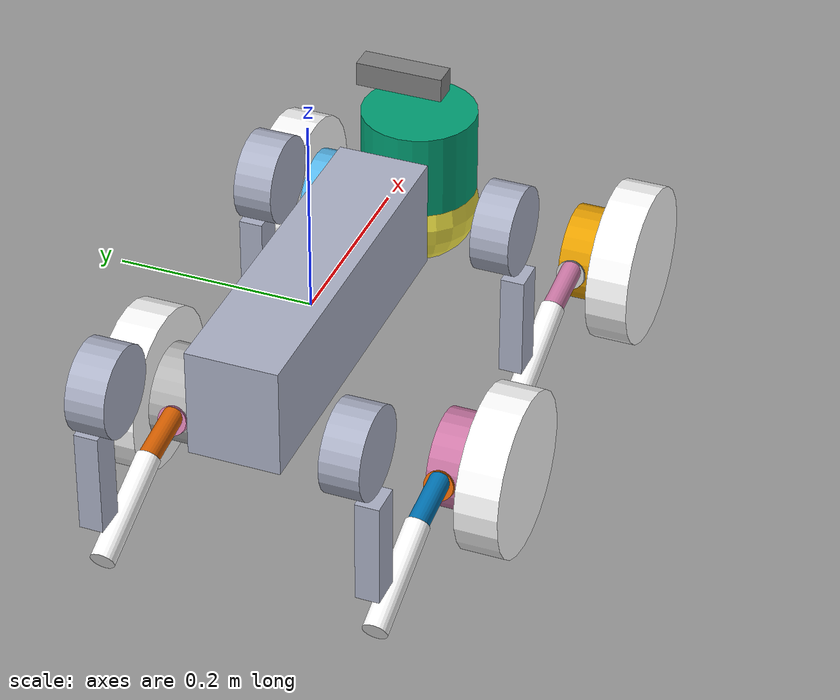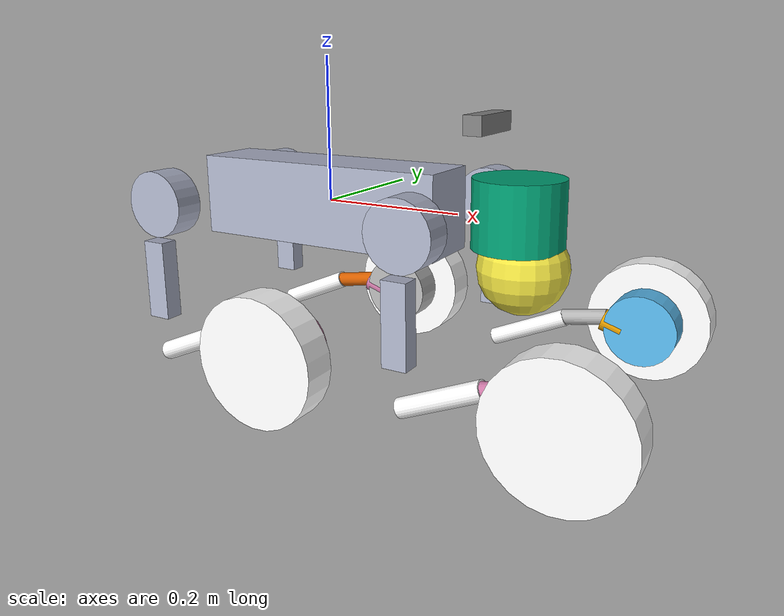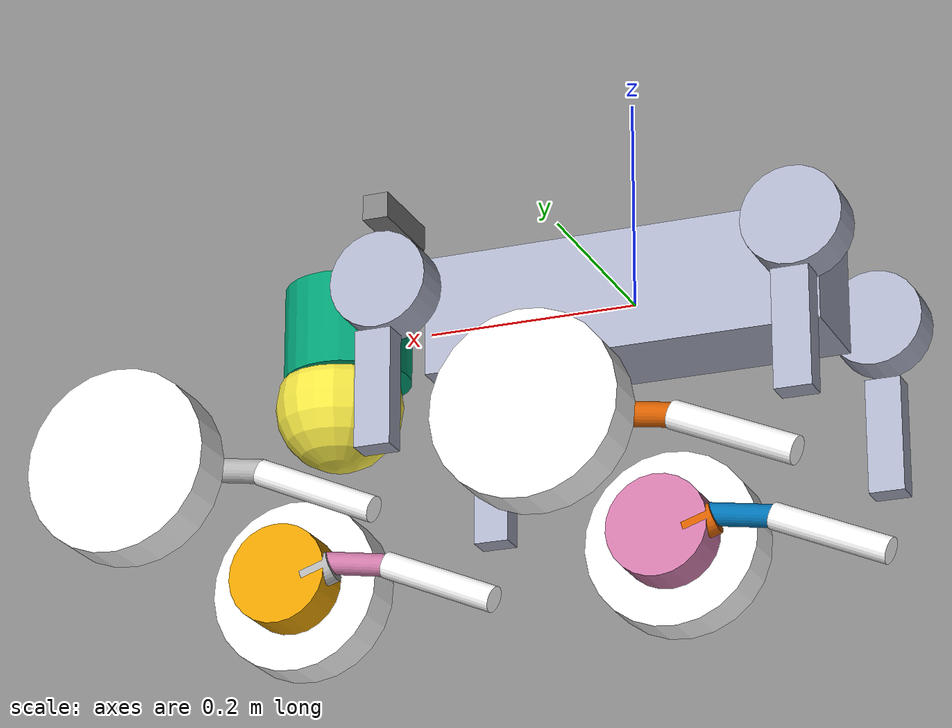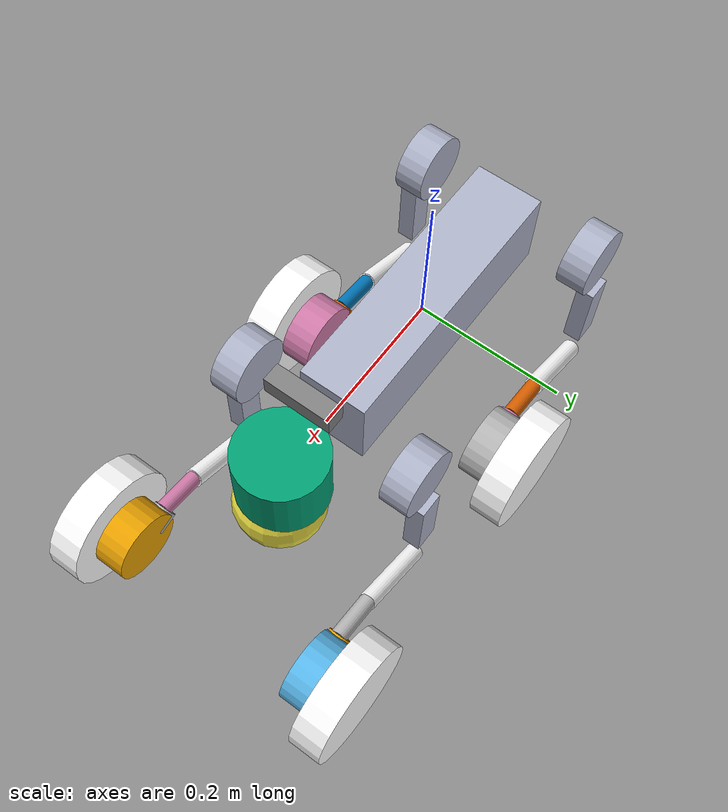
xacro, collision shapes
<?xml version="1.0"?>

<robot name="go2w_description" xmlns:xacro="http://www.ros.org/wiki/xacro">

    <xacro:include filename="$(find go2w_description)/urdf/go2w_description.urdf"/>
    <xacro:include filename="$(find go2w_description)/xacro/gazebo.xacro"/>
    <xacro:include filename="$(find robot_common)/xacro/d435.xacro"/>

    <!-- D435 camera -->
    <xacro:sensor_d435 parent="trunk" name="camera">
        <origin xyz="0.24 0 0.12" rpy="0 0 0"/>
    </xacro:sensor_d435>

    <!-- Livox Mid360 LiDAR -->

</robot>

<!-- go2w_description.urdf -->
<robot name="go2w_description">
  <link name="base">
    <visual>
      <origin rpy="0 0 0" xyz="0 0 0"/>
      <geometry>
        <box size="0.001 0.001 0.001"/>
      </geometry>
    </visual>
  </link>
  <joint name="floating_base" type="fixed">
    <origin rpy="0 0 0" xyz="0 0 0"/>
    <parent link="base"/>
    <child link="trunk"/>
  </joint>

  <link name="trunk">
    <inertial>
      <origin xyz="0.021112 0 -0.005366" rpy="0 0 0" />
      <mass value="6.921" />
      <inertia ixx="0.02448" ixy="0.00012166" ixz="0.0014849" iyy="0.098077" iyz="-3.12E-05" izz="0.107" />
    </inertial>
    <visual>
      <origin xyz="0 0 0" rpy="0 0 0" />
      <geometry>
        <mesh filename="package://go2w_description/meshes/base.dae" />
      </geometry>
      <material name="深色橡胶_001-effect"><color rgba="0.6717055 0.6924257 0.7742702 1" /></material><material name="白色logo_001-effect"><color rgba="1 1 1 1" /></material><material name="黑色贴纸_007-effect"><color rgba="0.009018 0.009018 0.009018 1" /></material><material name="黑色金属_007-effect"><color rgba="0.01341 0.01341 0.01341 1" /></material><material name="黑色塑料_003-effect"><color rgba="0.023455 0.023455 0.023455 1" /></material></visual>
    <collision>
      <origin rpy="0 0 0" xyz="0 0 0" />
      <geometry>
        <box size="0.3762 0.0935 0.114" />
      </geometry>
    </collision>
  </link>
  <link name="Head_upper">
    <inertial>
      <origin xyz="0 0 0" rpy="0 0 0" />
      <mass value="0.001" />
      <inertia ixx="9.6e-06" ixy="0" ixz="0" iyy="9.6e-06" iyz="0" izz="9.6e-06" />
    </inertial>
    <collision>
      <origin xyz="0 0 0" rpy="0 0 0" />
      <geometry>
        <cylinder radius="0.06" length="0.09" />
      </geometry>
    </collision>
  </link>
  <joint name="Head_upper_joint" type="fixed" dont_collapse="true">
    <origin xyz="0.285 0 0.01" rpy="0 0 0" />
    <parent link="trunk" />
    <child link="Head_upper" />
    <axis xyz="0 0 0" />
  </joint>
  <link name="Head_lower">
    <inertial>
      <origin xyz="0 0 0" rpy="0 0 0" />
      <mass value="0.001" />
      <inertia ixx="9.6e-06" ixy="0" ixz="0" iyy="9.6e-06" iyz="0" izz="9.6e-06" />
    </inertial>
    <collision>
      <origin xyz="0 0 0" rpy="0 0 0" />
      <geometry>
        <sphere radius="0.06" />
      </geometry>
    </collision>
  </link>
  <joint name="Head_lower_joint" type="fixed" dont_collapse="true">
    <origin xyz="0.008 0 -0.07" rpy="0 0 0" />
    <parent link="Head_upper" />
    <child link="Head_lower" />
    <axis xyz="0 0 0" />
  </joint>
  <link name="FL_hip">
    <inertial>
      <origin xyz="-0.0054 0.00194 -0.000105" rpy="0 0 0" />
      <mass value="0.678" />
      <inertia ixx="0.00048" ixy="-3.01E-06" ixz="1.11E-06" iyy="0.000884" iyz="-1.42E-06" izz="0.000596" />
    </inertial>
    <visual>
      <origin xyz="0 0 0" rpy="0 0 0" />
      <geometry>
        <mesh filename="package://go2w_description/meshes/hip.dae" />
      </geometry>
      <material name="深色橡胶_001-effect"><color rgba="0.6717055 0.6924257 0.7742702 1" /></material><material name="Material-effect"><color rgba="0.9 0.95 0.95 1" /></material></visual>
    <collision>
      <origin rpy="1.5707963267948966 0 0" xyz="0 0.08 0" />
      <geometry>
        <cylinder length="0.04" radius="0.046" />
      </geometry>
    </collision>
  </link>
  <joint name="FL_hip_joint" type="revolute">
    <origin xyz="0.1934 0.0465 0" rpy="0 0 0" />
    <parent link="trunk" />
    <child link="FL_hip" />
    <axis xyz="1 0 0" />
    <limit lower="-1.0472" upper="1.0472" effort="23.7" velocity="30.1" />
  </joint>
  <link name="FL_thigh">
    <inertial>
      <origin xyz="-0.00374 -0.0223 -0.0327" rpy="0 0 0" />
      <mass value="1.152" />
      <inertia ixx="0.00584" ixy="8.72E-05" ixz="-0.000289" iyy="0.0058" iyz="0.000808" izz="0.00103" />
    </inertial>
    <visual>
      <origin xyz="0 0 0" rpy="0 0 0" />
      <geometry>
        <mesh filename="package://go2w_description/meshes/thigh.dae" />
      </geometry>
      <material name="深色橡胶_003-effect"><color rgba="0.6717055 0.6924257 0.7742702 1" /></material><material name="Material_009-effect"><color rgba="0.9 0.95 0.95 1" /></material></visual>
    <collision>
      <origin rpy="0 1.5707963267948966 0" xyz="0 0 -0.1065" />
      <geometry>
        <box size="0.11 0.0245 0.034" />
      </geometry>
    </collision>
  </link>
  <joint name="FL_thigh_joint" type="revolute">
    <origin xyz="0 0.0955 0" rpy="0 0 0" />
    <parent link="FL_hip" />
    <child link="FL_thigh" />
    <axis xyz="0 1 0" />
    <limit lower="-1.5707963267948966" upper="3.4907" effort="23.7" velocity="30.1" />
  </joint>
  <link name="FL_calf">
    <inertial>
      <origin xyz="0.00548 -0.000975 -0.115" rpy="0 0 0" />
      <mass value="0.154" />
      <inertia ixx="0.00108" ixy="3.4E-07" ixz="1.72E-05" iyy="0.0011" iyz="8.28E-06" izz="3.29E-05" />
    </inertial>
    <visual>
      <origin xyz="0 0 0" rpy="0 0 0" />
      <geometry>
        <mesh filename="package://go2w_description/meshes/calf.stl" />
      </geometry>
      <material name="">
        <color rgba="1 1 1 1" />
      </material>
    </visual>
    <collision>
      <origin rpy="0 -0.21 0" xyz="0.008 0 -0.06" />
      <geometry>
        <cylinder length="0.12" radius="0.012" />
      </geometry>
    </collision>
  </link>
  <joint name="FL_calf_joint" type="revolute">
    <origin xyz="0 0 -0.213" rpy="0 0 0" />
    <parent link="FL_thigh" />
    <child link="FL_calf" />
    <axis xyz="0 1 0" />
    <limit lower="-2.7227" upper="-0.83776" effort="35.55" velocity="20.07" />
  </joint>
  <link name="FL_calflower">
    <collision>
      <origin rpy="0 0 0" xyz="0 0 0" />
      <geometry>
        <cylinder length="0.065" radius="0.011" />
      </geometry>
    </collision>
  </link>
  <joint name="FL_calflower_joint" type="fixed">
    <origin xyz="0.020 0 -0.148" rpy="0 0.05 0" />
    <parent link="FL_calf" />
    <child link="FL_calflower" />
    <axis xyz="0 0 0" />
  </joint>
  <link name="FL_calflower1">
    <collision>
      <origin rpy="0 0 0" xyz="0 0 0" />
      <geometry>
        <cylinder length="0.03" radius="0.0155" />
      </geometry>
    </collision>
  </link>
  <joint name="FL_calflower1_joint" type="fixed">
    <origin xyz="-0.01 0 -0.04" rpy="0 0.48 0" />
    <parent link="FL_calflower" />
    <child link="FL_calflower1" />
    <axis xyz="0 0 0" />
  </joint>

  <link name="FL_foot_motor">
    <inertial>
      <origin xyz="0 0.0 0" rpy="0 0 0" />
      <mass value="0.646" />
      <inertia ixx="0.001" ixy="0" ixz="0" iyy="0.0016" iyz="0" izz="0.001" />
    </inertial>
    <collision>
      <origin rpy="1.5707963267948966 0 0" xyz="0 0 0" />
      <geometry>
        <cylinder length="0.05" radius="0.05" />
      </geometry>
    </collision>
  </link>

  <joint name="FL_foot_motor_joint" type="fixed">
    <origin xyz="-0.00 0.01 -0.2264" rpy="0 0.0 0" />
    <parent link="FL_calf" />
    <child link="FL_foot_motor" />
    <axis xyz="0 0 0" />
  </joint>

  <link name="FL_foot">
    <inertial>
      <origin xyz="0 0.06 0" rpy="0 0 0" />
      <mass value="0.520" />
      <inertia ixx="0.0007" ixy="0" ixz="0" iyy="0.0012" iyz="0" izz="0.0007" />
    </inertial>
    <visual>
      <origin xyz="0 0 0" rpy="0 0 0" />
      <geometry>
        <mesh filename="package://go2w_description/meshes/left_wheel.dae" />
      </geometry>
      <material name="">
        <color rgba="1 1 1 1" />
      </material>
    </visual>
    <collision>
      <origin rpy="1.57079632679 0 0" xyz="0 0.05 0" />
      <geometry>
        <cylinder length="0.045" radius="0.086" />
      </geometry>
    </collision>
  </link>
  <joint name="FL_foot_joint" type="continuous">
    <origin xyz="0 0 -0.2264" rpy="0 0 0" />
    <parent link="FL_calf" />
    <child link="FL_foot" />
    <axis xyz="0 1 0" />

      <limit effort="23.7" velocity="30.1" />
  </joint>

  <link name="FR_hip">
    <inertial>
      <origin xyz="-0.0054 -0.00194 -0.000105" rpy="0 0 0" />
      <mass value="0.678" />
      <inertia ixx="0.00048" ixy="3.01E-06" ixz="1.11E-06" iyy="0.000884" iyz="1.42E-06" izz="0.000596" />
    </inertial>
    <visual>
      <origin xyz="0 0 0" rpy="3.1415 0 0" />
      <geometry>
        <mesh filename="package://go2w_description/meshes/hip.dae" />
      </geometry>
      <material name="深色橡胶_001-effect"><color rgba="0.6717055 0.6924257 0.7742702 1" /></material><material name="Material-effect"><color rgba="0.9 0.95 0.95 1" /></material></visual>
    <collision>
      <origin rpy="1.5707963267948966 0 0" xyz="0 -0.08 0" />
      <geometry>
        <cylinder length="0.04" radius="0.046" />
      </geometry>
    </collision>
  </link>
  <joint name="FR_hip_joint" type="revolute">
    <origin xyz="0.1934 -0.0465 0" rpy="0 0 0" />
    <parent link="trunk" />
    <child link="FR_hip" />
    <axis xyz="1 0 0" />
    <limit lower="-1.0472" upper="1.0472" effort="23.7" velocity="30.1" />
  </joint>
  <link name="FR_thigh">
    <inertial>
      <origin xyz="-0.00374 0.0223 -0.0327" rpy="0 0 0" />
      <mass value="1.152" />
      <inertia ixx="0.00584" ixy="-8.72E-05" ixz="-0.000289" iyy="0.0058" iyz="-0.000808" izz="0.00103" />
    </inertial>
    <visual>
      <origin xyz="0 0 0" rpy="0 0 0" />
      <geometry>
        <mesh filename="package://go2w_description/meshes/thigh_mirror.dae" />
      </geometry>
      <material name="深色橡胶_012-effect"><color rgba="0.6717055 0.6924257 0.7742702 1" /></material><material name="Material_011-effect"><color rgba="0.9 0.95 0.95 1" /></material></visual>
    <collision>
      <origin rpy="0 1.5707963267948966 0" xyz="0 0 -0.1065" />
      <geometry>
        <box size="0.11 0.0245 0.034" />
      </geometry>
    </collision>
  </link>
  <joint name="FR_thigh_joint" type="revolute">
    <origin xyz="0 -0.0955 0" rpy="0 0 0" />
    <parent link="FR_hip" />
    <child link="FR_thigh" />
    <axis xyz="0 1 0" />
    <limit lower="-1.5707963267948966" upper="3.4907" effort="23.7" velocity="30.1" />
  </joint>
  <link name="FR_calf">
    <inertial>
      <origin xyz="0.00548 0.000975 -0.115" rpy="0 0 0" />
      <mass value="0.154" />
      <inertia ixx="0.00108" ixy="-3.4E-07" ixz="1.72E-05" iyy="0.0011" iyz="-8.28E-06" izz="3.29E-05" />
    </inertial>
    <visual>
      <origin xyz="0 0 0" rpy="0 0 0" />
      <geometry>
        <mesh filename="package://go2w_description/meshes/calf_mirror.stl" />
      </geometry>
      <material name="">
        <color rgba="1 1 1 1" />
      </material>
    </visual>
    <collision>
      <origin rpy="0 -0.2 0" xyz="0.01 0 -0.06" />
      <geometry>
        <cylinder length="0.12" radius="0.013" />
      </geometry>
    </collision>
  </link>
  <joint name="FR_calf_joint" type="revolute">
    <origin xyz="0 0 -0.213" rpy="0 0 0" />
    <parent link="FR_thigh" />
    <child link="FR_calf" />
    <axis xyz="0 1 0" />
    <limit lower="-2.7227" upper="-0.83776" effort="35.55" velocity="20.07" />
  </joint>
  <link name="FR_calflower">
    <collision>
      <origin rpy="0 0 0" xyz="0 0 0" />
      <geometry>
        <cylinder length="0.065" radius="0.011" />
      </geometry>
    </collision>
  </link>
  <joint name="FR_calflower_joint" type="fixed">
    <origin xyz="0.020 0 -0.148" rpy="0 0.05 0" />
    <parent link="FR_calf" />
    <child link="FR_calflower" />
    <axis xyz="0 0 0" />
  </joint>
  <link name="FR_calflower1">
    <collision>
      <origin rpy="0 0 0" xyz="0 0 0" />
      <geometry>
        <cylinder length="0.03" radius="0.0155" />
      </geometry>
    </collision>
  </link>
  <joint name="FR_calflower1_joint" type="fixed">
    <origin xyz="-0.01 0 -0.04" rpy="0 0.48 0" />
    <parent link="FR_calflower" />
    <child link="FR_calflower1" />
    <axis xyz="0 0 0" />
  </joint>

  <link name="FR_foot_motor">
    <inertial>
      <origin xyz="0 0.0 0" rpy="0 0 0" />
      <mass value="0.646" />
      <inertia ixx="0.001" ixy="0" ixz="0" iyy="0.0016" iyz="0" izz="0.001" />
    </inertial>
    <collision>
      <origin rpy="1.5707963267948966 0 0" xyz="0 0 0" />
      <geometry>
        <cylinder length="0.05" radius="0.05" />
      </geometry>
    </collision>
  </link>

  <joint name="FR_foot_motor_joint" type="fixed">
    <origin xyz="0.0 -0.01 -0.2264" rpy="0 0.0 0" />
    <parent link="FR_calf" />
    <child link="FR_foot_motor" />
    <axis xyz="0 0 0" />
  </joint>

  <link name="FR_foot">
    <inertial>
      <origin xyz="0 -0.06 0" rpy="0 0 0" />
      <mass value="0.520" />
      <inertia ixx="0.0007" ixy="0" ixz="0" iyy="0.0012" iyz="0" izz="0.0007" />
    </inertial>
    <visual>
      <origin xyz="0 0 0" rpy="0 0 0" />
      <geometry>
        <mesh filename="package://go2w_description/meshes/right_wheel.dae" />
      </geometry>
      <material name="">
        <color rgba="1 1 1 1" />
      </material>
    </visual>
    <collision>
      <origin rpy="1.57079632679 0 0" xyz="0 -0.05 0" />
      <geometry>
        <cylinder length="0.045" radius="0.086" />
      </geometry>
    </collision>
  </link>
  <joint name="FR_foot_joint" type="continuous">
    <origin xyz="0 0 -0.2264" rpy="0 0 0" />
    <parent link="FR_calf" />
    <child link="FR_foot" />
    <axis xyz="0 1 0" />
      <limit effort="23.7" velocity="30.1" />
  </joint>

  <link name="RL_hip">
    <inertial>
      <origin xyz="0.0054 0.00194 -0.000105" rpy="0 0 0" />
      <mass value="0.678" />
      <inertia ixx="0.00048" ixy="3.01E-06" ixz="-1.11E-06" iyy="0.000884" iyz="-1.42E-06" izz="0.000596" />
    </inertial>
    <visual>
      <origin xyz="0 0 0" rpy="0 3.1415 0" />
      <geometry>
        <mesh filename="package://go2w_description/meshes/hip.dae" />
      </geometry>
      <material name="深色橡胶_001-effect"><color rgba="0.6717055 0.6924257 0.7742702 1" /></material><material name="Material-effect"><color rgba="0.9 0.95 0.95 1" /></material></visual>
    <collision>
      <origin rpy="1.5707963267948966 0 0" xyz="0 0.08 0" />
      <geometry>
        <cylinder length="0.04" radius="0.046" />
      </geometry>
    </collision>
  </link>
  <joint name="RL_hip_joint" type="revolute">
    <origin xyz="-0.1934 0.0465 0" rpy="0 0 0" />
    <parent link="trunk" />
    <child link="RL_hip" />
    <axis xyz="1 0 0" />
    <limit lower="-1.0472" upper="1.0472" effort="23.7" velocity="30.1" />
  </joint>
  <link name="RL_thigh">
    <inertial>
      <origin xyz="-0.00374 -0.0223 -0.0327" rpy="0 0 0" />
      <mass value="1.152" />
      <inertia ixx="0.00584" ixy="8.72E-05" ixz="-0.000289" iyy="0.0058" iyz="0.000808" izz="0.00103" />
    </inertial>
    <visual>
      <origin xyz="0 0 0" rpy="0 0 0" />
      <geometry>
        <mesh filename="package://go2w_description/meshes/thigh.dae" />
      </geometry>
      <material name="深色橡胶_003-effect"><color rgba="0.6717055 0.6924257 0.7742702 1" /></material><material name="Material_009-effect"><color rgba="0.9 0.95 0.95 1" /></material></visual>
    <collision>
      <origin rpy="0 1.5707963267948966 0" xyz="0 0 -0.1065" />
      <geometry>
        <box size="0.11 0.0245 0.034" />
      </geometry>
    </collision>
  </link>
  <joint name="RL_thigh_joint" type="revolute">
    <origin xyz="0 0.0955 0" rpy="0 0 0" />
    <parent link="RL_hip" />
    <child link="RL_thigh" />
    <axis xyz="0 1 0" />
    <limit lower="-0.5236" upper="4.5379" effort="23.7" velocity="30.1" />
  </joint>
  <link name="RL_calf">
    <inertial>
      <origin xyz="0.00548 -0.000975 -0.115" rpy="0 0 0" />
      <mass value="0.154" />
      <inertia ixx="0.00108" ixy="3.4E-07" ixz="1.72E-05" iyy="0.0011" iyz="8.28E-06" izz="3.29E-05" />
    </inertial>
    <visual>
      <origin xyz="0 0 0" rpy="0 0 0" />
      <geometry>
        <mesh filename="package://go2w_description/meshes/calf.stl" />
      </geometry>
      <material name="">
        <color rgba="1 1 1 1" />
      </material>
    </visual>
    <collision>
      <origin rpy="0 -0.2 0" xyz="0.01 0 -0.06" />
      <geometry>
        <cylinder length="0.12" radius="0.013" />
      </geometry>
    </collision>
  </link>
  <joint name="RL_calf_joint" type="revolute">
    <origin xyz="0 0 -0.213" rpy="0 0 0" />
    <parent link="RL_thigh" />
    <child link="RL_calf" />
    <axis xyz="0 1 0" />
    <limit lower="-2.7227" upper="-0.83776" effort="35.55" velocity="20.07" />
  </joint>
  <link name="RL_calflower">
    <collision>
      <origin rpy="0 0 0" xyz="0 0 0" />
      <geometry>
        <cylinder length="0.065" radius="0.011" />
      </geometry>
    </collision>
  </link>
  <joint name="RL_calflower_joint" type="fixed">
    <origin xyz="0.020 0 -0.148" rpy="0 0.05 0" />
    <parent link="RL_calf" />
    <child link="RL_calflower" />
    <axis xyz="0 0 0" />
  </joint>
  <link name="RL_calflower1">
    <collision>
      <origin rpy="0 0 0" xyz="0 0 0" />
      <geometry>
        <cylinder length="0.03" radius="0.0155" />
      </geometry>
    </collision>
  </link>
  <joint name="RL_calflower1_joint" type="fixed">
    <origin xyz="-0.01 0 -0.04" rpy="0 0.48 0" />
    <parent link="RL_calflower" />
    <child link="RL_calflower1" />
    <axis xyz="0 0 0" />
  </joint>

  <link name="RL_foot_motor">
  <inertial>
    <origin xyz="0 0.0 0" rpy="0 0 0" />
    <mass value="0.646" />
    <inertia ixx="0.001" ixy="0" ixz="0" iyy="0.0016" iyz="0" izz="0.001" />
  </inertial>
  <collision>
    <origin rpy="1.5707963267948966 0 0" xyz="0 0 0" />
    <geometry>
      <cylinder length="0.05" radius="0.05" />
    </geometry>
  </collision>
</link>

<joint name="RL_foot_motor_joint" type="fixed">
  <origin xyz="0.00 0.01 -0.2264" rpy="0 0.0 0" />
  <parent link="RL_calf" />
  <child link="RL_foot_motor" />
  <axis xyz="0 0 0" />
</joint>

  <link name="RL_foot">
    <inertial>
      <origin xyz="0 0.06 0" rpy="0 0 0" />
      <mass value="0.520" />
      <inertia ixx="0.0007" ixy="0" ixz="0" iyy="0.0012" iyz="0" izz="0.0007" />
    </inertial>
    <visual>
      <origin xyz="0 0 0" rpy="0 0 0" />
      <geometry>
        <mesh filename="package://go2w_description/meshes/left_wheel.dae" />
      </geometry>
      <material name="">
        <color rgba="1 1 1 1" />
      </material>
    </visual>
    <collision>
      <origin rpy="1.57079632679 0 0" xyz="0 0.05 0" />
      <geometry>
        <cylinder length="0.045" radius="0.086" />
      </geometry>
    </collision>
  </link>
  <joint name="RL_foot_joint" type="continuous">
    <origin xyz="0.0 0 -0.2264" rpy="0 0 0" />
    <parent link="RL_calf" />
    <child link="RL_foot" />
    <axis xyz="0 1 0" />
      <limit effort="23.7" velocity="30.1" />
  </joint>

  <link name="RR_hip">
    <inertial>
      <origin xyz="0.0054 -0.00194 -0.000105" rpy="0 0 0" />
      <mass value="0.678" />
      <inertia ixx="0.00048" ixy="-3.01E-06" ixz="-1.11E-06" iyy="0.000884" iyz="1.42E-06" izz="0.000596" />
    </inertial>
    <visual>
      <origin xyz="0 0 0" rpy="3.1415 3.1415 0" />
      <geometry>
        <mesh filename="package://go2w_description/meshes/hip.dae" />
      </geometry>
      <material name="深色橡胶_001-effect"><color rgba="0.6717055 0.6924257 0.7742702 1" /></material><material name="Material-effect"><color rgba="0.9 0.95 0.95 1" /></material></visual>
    <collision>
      <origin rpy="1.5707963267948966 0 0" xyz="0 -0.08 0" />
      <geometry>
        <cylinder length="0.04" radius="0.046" />
      </geometry>
    </collision>
  </link>
  <joint name="RR_hip_joint" type="revolute">
    <origin xyz="-0.1934 -0.0465 0" rpy="0 0 0" />
    <parent link="trunk" />
    <child link="RR_hip" />
    <axis xyz="1 0 0" />
    <limit lower="-1.0472" upper="1.0472" effort="23.7" velocity="30.1" />
  </joint>
  <link name="RR_thigh">
    <inertial>
      <origin xyz="-0.00374 0.0223 -0.0327" rpy="0 0 0" />
      <mass value="1.152" />
      <inertia ixx="0.00584" ixy="-8.72E-05" ixz="-0.000289" iyy="0.0058" iyz="-0.000808" izz="0.00103" />
    </inertial>
    <visual>
      <origin xyz="0 0 0" rpy="0 0 0" />
      <geometry>
        <mesh filename="package://go2w_description/meshes/thigh_mirror.dae" />
      </geometry>
      <material name="深色橡胶_012-effect"><color rgba="0.6717055 0.6924257 0.7742702 1" /></material><material name="Material_011-effect"><color rgba="0.9 0.95 0.95 1" /></material></visual>
    <collision>
      <origin rpy="0 1.5707963267948966 0" xyz="0 0 -0.1065" />
      <geometry>
        <box size="0.11 0.0245 0.034" />
      </geometry>
    </collision>
  </link>
  <joint name="RR_thigh_joint" type="revolute">
    <origin xyz="0 -0.0955 0" rpy="0 0 0" />
    <parent link="RR_hip" />
    <child link="RR_thigh" />
    <axis xyz="0 1 0" />
    <limit lower="-0.5236" upper="4.5379" effort="23.7" velocity="30.1" />
  </joint>
  <link name="RR_calf">
    <inertial>
      <origin xyz="0.00548 0.000975 -0.115" rpy="0 0 0" />
      <mass value="0.154" />
      <inertia ixx="0.00108" ixy="-3.4E-07" ixz="1.72E-05" iyy="0.0011" iyz="-8.28E-06" izz="3.29E-05" />
    </inertial>
    <visual>
      <origin xyz="0 0 0" rpy="0 0 0" />
      <geometry>
        <mesh filename="package://go2w_description/meshes/calf_mirror.stl" />
      </geometry>
      <material name="">
        <color rgba="1 1 1 1" />
      </material>
    </visual>
    <collision>
      <origin rpy="0 -0.2 0" xyz="0.01 0 -0.06" />
      <geometry>
        <cylinder length="0.12" radius="0.013" />
      </geometry>
    </collision>
  </link>
  <joint name="RR_calf_joint" type="revolute">
    <origin xyz="0 0 -0.213" rpy="0 0 0" />
    <parent link="RR_thigh" />
    <child link="RR_calf" />
    <axis xyz="0 1 0" />
    <limit lower="-2.7227" upper="-0.83776" effort="35.55" velocity="20.07" />
  </joint>
  <link name="RR_calflower">
    <collision>
      <origin rpy="0 0 0" xyz="0 0 0" />
      <geometry>
        <cylinder length="0.065" radius="0.011" />
      </geometry>
    </collision>
  </link>
  <joint name="RR_calflower_joint" type="fixed">
    <origin xyz="0.020 0 -0.148" rpy="0 0.05 0" />
    <parent link="RR_calf" />
    <child link="RR_calflower" />
    <axis xyz="0 0 0" />
  </joint>
  <link name="RR_calflower1">
    <collision>
      <origin rpy="0 0 0" xyz="0 0 0" />
      <geometry>
        <cylinder length="0.03" radius="0.0155" />
      </geometry>
    </collision>
  </link>
  <joint name="RR_calflower1_joint" type="fixed">
    <origin xyz="-0.01 0 -0.04" rpy="0 0.48 0" />
    <parent link="RR_calflower" />
    <child link="RR_calflower1" />
    <axis xyz="0 0 0" />
  </joint>

  <link name="RR_foot_motor">
  <inertial>
    <origin xyz="0 0.0 0" rpy="0 0 0" />
    <mass value="0.646" />
    <inertia ixx="0.001" ixy="0" ixz="0" iyy="0.0016" iyz="0" izz="0.001" />
  </inertial>
  <collision>
    <origin rpy="1.5707963267948966 0 0" xyz="0 0 0" />
    <geometry>
      <cylinder length="0.05" radius="0.05" />
    </geometry>
  </collision>
</link>

<joint name="RR_foot_motor_joint" type="fixed">
  <origin xyz="0.00 -0.01 -0.2264" rpy="0 0.0 0" />
  <parent link="RR_calf" />
  <child link="RR_foot_motor" />
  <axis xyz="0 0 0" />
</joint>

  <link name="RR_foot">
    <inertial>
      <origin xyz="0 -0.06 0" rpy="0 0 0" />
      <mass value="0.520" />
      <inertia ixx="0.0007" ixy="0" ixz="0" iyy="0.0012" iyz="0" izz="0.0007" />
    </inertial>
    <visual>
      <origin xyz="0 0 0" rpy="0 0 0" />
      <geometry>
        <mesh filename="package://go2w_description/meshes/right_wheel.dae" />
      </geometry>
      <material name="">
        <color rgba="1 1 1 1" />
      </material>
    </visual>
    <collision>
      <origin rpy="1.57079632679 0 0" xyz="0 -0.05 0" />
      <geometry>
        <cylinder length="0.045" radius="0.086" />
      </geometry>
    </collision>
  </link>
  <joint name="RR_foot_joint" type="continuous">
    <origin xyz="-0.0 0 -0.2264" rpy="0 0 0" />
    <parent link="RR_calf" />
    <child link="RR_foot" />
    <axis xyz="0 1 0" />
      <limit effort="23.7" velocity="30.1" />
  </joint>
  <link name="imu_link">
    <inertial>
      <origin xyz="0 0 0" rpy="0 0 0" />
      <mass value="0" />
      <inertia ixx="0" ixy="0" ixz="0" iyy="0" iyz="0" izz="0" />
    </inertial>
  </link>
  <joint name="imu_joint" type="fixed">
    <origin xyz="-0.02557 0 0.04232" rpy="0 0 0" />
    <parent link="trunk" />
    <child link="imu_link" />
    <axis xyz="0 0 0" />
  </joint>
  <link name="radar_link">
    <inertial>
      <origin xyz="0 0 0" rpy="0 0 0" />
      <mass value="0" />
      <inertia ixx="0" ixy="0" ixz="0" iyy="0" iyz="0" izz="0" />
    </inertial>
  </link>
  <joint name="radar_joint" type="fixed">
    <origin xyz="0.28945 0 -0.046825" rpy="0 2.8782 0" />
    <parent link="trunk" />
    <child link="radar_link" />
    <axis xyz="0 0 0" />
  </joint>

  <transmission name="FL_hip_tran">
    <type>transmission_interface/SimpleTransmission</type>
    <joint name="FL_hip_joint">
      <hardwareInterface>hardware_interface/EffortJointInterface</hardwareInterface>
    </joint>
    <actuator name="FL_hip_motor">
      <hardwareInterface>hardware_interface/EffortJointInterface</hardwareInterface>
      <mechanicalReduction>1</mechanicalReduction>
    </actuator>
  </transmission>
  <transmission name="FL_thigh_tran">
    <type>transmission_interface/SimpleTransmission</type>
    <joint name="FL_thigh_joint">
      <hardwareInterface>hardware_interface/EffortJointInterface</hardwareInterface>
    </joint>
    <actuator name="FL_thigh_motor">
      <hardwareInterface>hardware_interface/EffortJointInterface</hardwareInterface>
      <mechanicalReduction>1</mechanicalReduction>
    </actuator>
  </transmission>
  <transmission name="FL_calf_tran">
    <type>transmission_interface/SimpleTransmission</type>
    <joint name="FL_calf_joint">
      <hardwareInterface>hardware_interface/EffortJointInterface</hardwareInterface>
    </joint>
    <actuator name="FL_calf_motor">
      <hardwareInterface>hardware_interface/EffortJointInterface</hardwareInterface>
      <mechanicalReduction>1</mechanicalReduction>
    </actuator>
  </transmission>
  <transmission name="FL_foot_tran">
    <type>transmission_interface/SimpleTransmission</type>
    <joint name="FL_foot_joint">
      <hardwareInterface>hardware_interface/EffortJointInterface</hardwareInterface>
    </joint>
    <actuator name="FL_foot_motor">
      <hardwareInterface>hardware_interface/EffortJointInterface</hardwareInterface>
      <mechanicalReduction>1</mechanicalReduction>
    </actuator>
  </transmission>

  <transmission name="FR_hip_tran">
    <type>transmission_interface/SimpleTransmission</type>
    <joint name="FR_hip_joint">
      <hardwareInterface>hardware_interface/EffortJointInterface</hardwareInterface>
    </joint>
    <actuator name="FR_hip_motor">
      <hardwareInterface>hardware_interface/EffortJointInterface</hardwareInterface>
      <mechanicalReduction>1</mechanicalReduction>
    </actuator>
  </transmission>
  <transmission name="FR_thigh_tran">
    <type>transmission_interface/SimpleTransmission</type>
    <joint name="FR_thigh_joint">
      <hardwareInterface>hardware_interface/EffortJointInterface</hardwareInterface>
    </joint>
    <actuator name="FR_thigh_motor">
      <hardwareInterface>hardware_interface/EffortJointInterface</hardwareInterface>
      <mechanicalReduction>1</mechanicalReduction>
    </actuator>
  </transmission>
  <transmission name="FR_calf_tran">
    <type>transmission_interface/SimpleTransmission</type>
    <joint name="FR_calf_joint">
      <hardwareInterface>hardware_interface/EffortJointInterface</hardwareInterface>
    </joint>
    <actuator name="FR_calf_motor">
      <hardwareInterface>hardware_interface/EffortJointInterface</hardwareInterface>
      <mechanicalReduction>1</mechanicalReduction>
    </actuator>
  </transmission>
  <transmission name="FR_foot_tran">
    <type>transmission_interface/SimpleTransmission</type>
    <joint name="FR_foot_joint">
      <hardwareInterface>hardware_interface/EffortJointInterface</hardwareInterface>
    </joint>
    <actuator name="FR_foot_motor">
      <hardwareInterface>hardware_interface/EffortJointInterface</hardwareInterface>
      <mechanicalReduction>1</mechanicalReduction>
    </actuator>
  </transmission>

  <transmission name="RL_hip_tran">
    <type>transmission_interface/SimpleTransmission</type>
    <joint name="RL_hip_joint">
      <hardwareInterface>hardware_interface/EffortJointInterface</hardwareInterface>
    </joint>
    <actuator name="RL_hip_motor">
      <hardwareInterface>hardware_interface/EffortJointInterface</hardwareInterface>
      <mechanicalReduction>1</mechanicalReduction>
    </actuator>
  </transmission>
  <transmission name="RL_thigh_tran">
    <type>transmission_interface/SimpleTransmission</type>
    <joint name="RL_thigh_joint">
      <hardwareInterface>hardware_interface/EffortJointInterface</hardwareInterface>
    </joint>
    <actuator name="RL_thigh_motor">
      <hardwareInterface>hardware_interface/EffortJointInterface</hardwareInterface>
      <mechanicalReduction>1</mechanicalReduction>
    </actuator>
  </transmission>
  <transmission name="RL_calf_tran">
    <type>transmission_interface/SimpleTransmission</type>
    <joint name="RL_calf_joint">
      <hardwareInterface>hardware_interface/EffortJointInterface</hardwareInterface>
    </joint>
    <actuator name="RL_calf_motor">
      <hardwareInterface>hardware_interface/EffortJointInterface</hardwareInterface>
      <mechanicalReduction>1</mechanicalReduction>
    </actuator>
  </transmission>
  <transmission name="RL_foot_tran">
    <type>transmission_interface/SimpleTransmission</type>
    <joint name="RL_foot_joint">
      <hardwareInterface>hardware_interface/EffortJointInterface</hardwareInterface>
    </joint>
    <actuator name="RL_foot_motor">
      <hardwareInterface>hardware_interface/EffortJointInterface</hardwareInterface>
      <mechanicalReduction>1</mechanicalReduction>
    </actuator>
  </transmission>

  <transmission name="RR_hip_tran">
    <type>transmission_interface/SimpleTransmission</type>
    <joint name="RR_hip_joint">
      <hardwareInterface>hardware_interface/EffortJointInterface</hardwareInterface>
    </joint>
    <actuator name="RR_hip_motor">
      <hardwareInterface>hardware_interface/EffortJointInterface</hardwareInterface>
      <mechanicalReduction>1</mechanicalReduction>
    </actuator>
  </transmission>
  <transmission name="RR_thigh_tran">
    <type>transmission_interface/SimpleTransmission</type>
    <joint name="RR_thigh_joint">
      <hardwareInterface>hardware_interface/EffortJointInterface</hardwareInterface>
    </joint>
    <actuator name="RR_thigh_motor">
      <hardwareInterface>hardware_interface/EffortJointInterface</hardwareInterface>
      <mechanicalReduction>1</mechanicalReduction>
    </actuator>
  </transmission>
  <transmission name="RR_calf_tran">
    <type>transmission_interface/SimpleTransmission</type>
    <joint name="RR_calf_joint">
      <hardwareInterface>hardware_interface/EffortJointInterface</hardwareInterface>
    </joint>
    <actuator name="RR_calf_motor">
      <hardwareInterface>hardware_interface/EffortJointInterface</hardwareInterface>
      <mechanicalReduction>1</mechanicalReduction>
    </actuator>
  </transmission>
  <transmission name="RR_foot_tran">
    <type>transmission_interface/SimpleTransmission</type>
    <joint name="RR_foot_joint">
      <hardwareInterface>hardware_interface/EffortJointInterface</hardwareInterface>
    </joint>
    <actuator name="RR_foot_motor">
      <hardwareInterface>hardware_interface/EffortJointInterface</hardwareInterface>
      <mechanicalReduction>1</mechanicalReduction>
    </actuator>
  </transmission>

</robot>

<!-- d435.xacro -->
<!-- D435 camera xacro for go1_description using Gazebo native libgazebo_ros_camera.so -->

<robot name="sensor_d435" xmlns:xacro="http://ros.org/wiki/xacro">

  <xacro:macro name="sensor_d435" params="parent *origin name:=camera">
    <xacro:property name="M_PI" value="3.1415926535897931" />

    <!-- D435 dimensions -->
    <xacro:property name="d435_cam_width" value="0.090"/>
    <xacro:property name="d435_cam_height" value="0.025"/>
    <xacro:property name="d435_cam_depth" value="0.02505"/>

    <!-- camera body link -->
    <joint name="${name}_joint" type="fixed">
      <xacro:insert_block name="origin" />
      <parent link="${parent}"/>
      <child link="${name}_link" />
    </joint>

    <link name="${name}_link">
      <visual>
        <origin xyz="0 0 0" rpy="${M_PI/2} 0 ${M_PI/2}"/>
        <geometry>
          <mesh filename="package://robot_common/meshes/d435_simplified.stl" />
        </geometry>
        <material name="grey">
          <color rgba="0.5 0.5 0.5 1.0"/>
        </material>
      </visual>
      <collision>
        <origin xyz="0 0 0" rpy="0 0 0"/>
        <geometry>
          <box size="${d435_cam_depth} ${d435_cam_width} ${d435_cam_height}"/>
        </geometry>
      </collision>
      <inertial>
        <mass value="0.072" />
        <origin xyz="0 0 0" />
        <inertia ixx="0.003881243" ixy="0.0" ixz="0.0" iyy="0.000498940" iyz="0.0" izz="0.003879257" />
      </inertial>
    </link>

    <!-- Depth frame -->
    <joint name="${name}_depth_joint" type="fixed">
      <origin xyz="0 0 0" rpy="${-M_PI/2} 0 ${-M_PI/2}"/>
      <parent link="${name}_link"/>
      <child link="${name}_depth_frame"/>
    </joint>
    <link name="${name}_depth_frame"/>

    <!-- Color frame -->
    <joint name="${name}_color_joint" type="fixed">
      <origin xyz="0 0.015 0" rpy="${-M_PI/2} 0 ${-M_PI/2}"/>
      <parent link="${name}_link"/>
      <child link="${name}_color_frame"/>
    </joint>
    <link name="${name}_color_frame"/>

    <!-- Depth sensor -->
    <gazebo reference="${name}_link">
      <sensor name="${name}_depth" type="depth">
        <always_on>1</always_on>
        <update_rate>30</update_rate>
        <visualize>0</visualize>
        <camera>
          <horizontal_fov>1.57</horizontal_fov>
          <image>
            <width>320</width>
            <height>240</height>
          </image>
          <clip>
            <near>0.05</near>
            <far>10</far>
          </clip>
        </camera>
        <plugin name="${name}_depth_controller" filename="libgazebo_ros_camera.so">
          <ros>
            <namespace>${name}</namespace>
          </ros>
          <camera_name>depth</camera_name>
          <frame_name>${name}_depth_frame</frame_name>
          <min_depth>0.05</min_depth>
          <max_depth>10.0</max_depth>
        </plugin>
      </sensor>

      <!-- Color sensor 1.204277184 -->
      <sensor name="${name}_color" type="camera">
        <always_on>1</always_on>
        <update_rate>30</update_rate>
        <visualize>1</visualize>
        <camera>
          <horizontal_fov>1.57</horizontal_fov>
          <image>
            <width>320</width>
            <height>240</height>
            <format>RGB_INT8</format>
          </image>
          <clip>
            <near>0.05</near>
            <far>10</far>
          </clip>
        </camera>
        <plugin name="${name}_color_controller" filename="libgazebo_ros_camera.so">
          <ros>
            <namespace>${name}</namespace>
          </ros>
          <camera_name>color</camera_name>
          <frame_name>${name}_color_frame</frame_name>
        </plugin>
      </sensor>
    </gazebo>

  </xacro:macro>
</robot>
